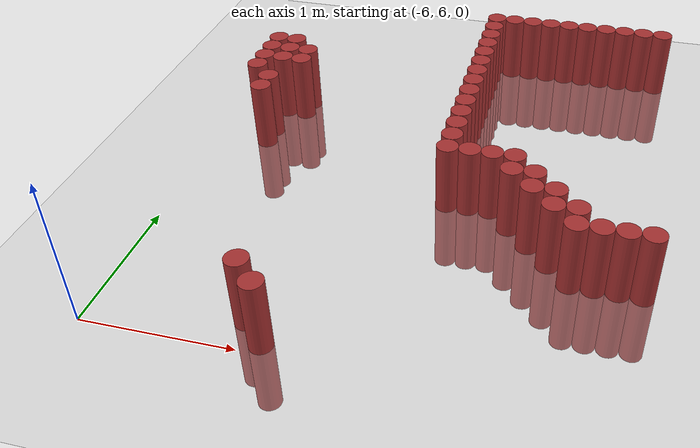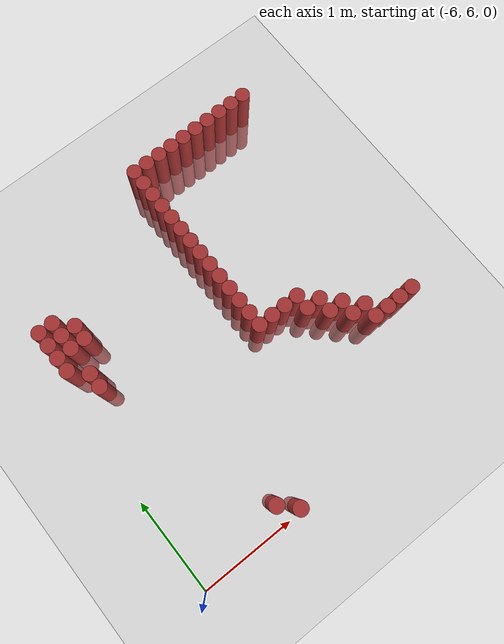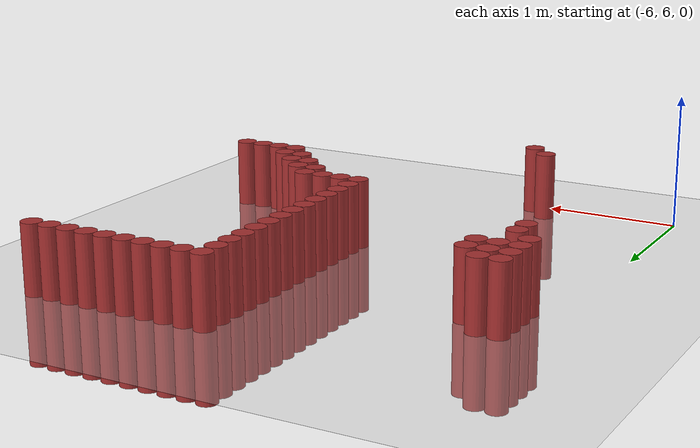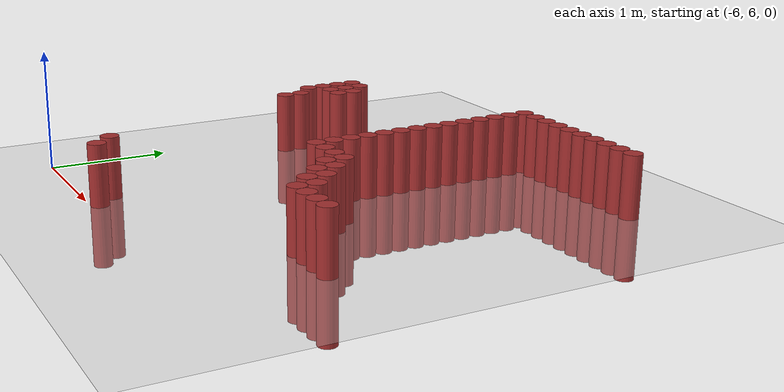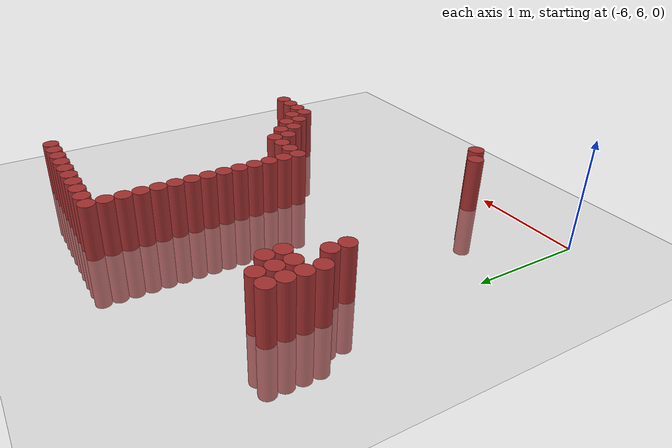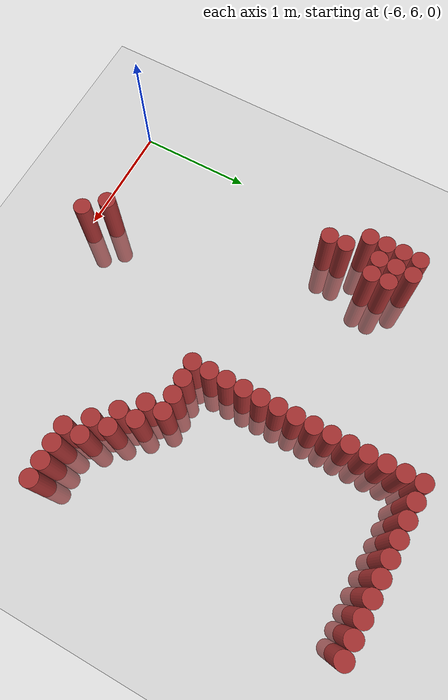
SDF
<sdf version="1.6">
 <world name="default">
  <model name="ground_plane">
   <static>1</static>
   <link name="link">
    <collision name="collision">
     <geometry><plane><normal>0 0 1</normal><size>100 100</size></plane></geometry>
     <surface><friction><ode><mu>100</mu><mu2>50</mu2></ode></friction></surface>
    </collision>
    <visual name="visual">
     <cast_shadows>0</cast_shadows>
     <geometry><plane><normal>0 0 1</normal><size>100 100</size></plane></geometry>
     <material>
      <script><uri>file://media/materials/scripts/gazebo.material</uri><name>Gazebo/Grey</name></script>
     </material>
    </visual>
   </link>
  </model>
  <model name="unit_cylinder_244">
   <static>1</static>
   <pose>-5.775000 8.325000 0.000000 0.000000 0.000000 0.000000</pose>
   <link name="link">
    <inertial>
     <mass>1</mass>
     <inertia><ixx>0.145833</ixx><ixy>0</ixy><ixz>0</ixz><iyy>0.145833</iyy><iyz>0</iyz><izz>0.125</izz></inertia>
    </inertial>
    <collision name="collision">
     <geometry><cylinder><radius>0.075000</radius><length>1</length></cylinder></geometry>
    </collision>
    <visual name="visual">
     <geometry><cylinder><radius>0.075000</radius><length>1</length></cylinder></geometry>
     <material>
      <ambient>0.648000 0.192000 0.192000 1</ambient>
      <diffuse>0.648000 0.192000 0.192000 1</diffuse>
     </material>
     <material>
      <script><name>Gazebo/Grey</name><uri>file://media/materials/scripts/gazebo.material</uri></script>
     </material>
    </visual>
   </link>
  </model>
  <model name="unit_cylinder_245">
   <static>1</static>
   <pose>-5.775000 8.475000 0.000000 0.000000 0.000000 0.000000</pose>
   <link name="link">
    <inertial>
     <mass>1</mass>
     <inertia><ixx>0.145833</ixx><ixy>0</ixy><ixz>0</ixz><iyy>0.145833</iyy><iyz>0</iyz><izz>0.125</izz></inertia>
    </inertial>
    <collision name="collision">
     <geometry><cylinder><radius>0.075000</radius><length>1</length></cylinder></geometry>
    </collision>
    <visual name="visual">
     <geometry><cylinder><radius>0.075000</radius><length>1</length></cylinder></geometry>
     <material>
      <ambient>0.648000 0.192000 0.192000 1</ambient>
      <diffuse>0.648000 0.192000 0.192000 1</diffuse>
     </material>
     <material>
      <script><name>Gazebo/Grey</name><uri>file://media/materials/scripts/gazebo.material</uri></script>
     </material>
    </visual>
   </link>
  </model>
  <model name="unit_cylinder_246">
   <static>1</static>
   <pose>-5.775000 8.625000 0.000000 0.000000 0.000000 0.000000</pose>
   <link name="link">
    <inertial>
     <mass>1</mass>
     <inertia><ixx>0.145833</ixx><ixy>0</ixy><ixz>0</ixz><iyy>0.145833</iyy><iyz>0</iyz><izz>0.125</izz></inertia>
    </inertial>
    <collision name="collision">
     <geometry><cylinder><radius>0.075000</radius><length>1</length></cylinder></geometry>
    </collision>
    <visual name="visual">
     <geometry><cylinder><radius>0.075000</radius><length>1</length></cylinder></geometry>
     <material>
      <ambient>0.648000 0.192000 0.192000 1</ambient>
      <diffuse>0.648000 0.192000 0.192000 1</diffuse>
     </material>
     <material>
      <script><name>Gazebo/Grey</name><uri>file://media/materials/scripts/gazebo.material</uri></script>
     </material>
    </visual>
   </link>
  </model>
  <model name="unit_cylinder_247">
   <static>1</static>
   <pose>-5.775000 8.775000 0.000000 0.000000 0.000000 0.000000</pose>
   <link name="link">
    <inertial>
     <mass>1</mass>
     <inertia><ixx>0.145833</ixx><ixy>0</ixy><ixz>0</ixz><iyy>0.145833</iyy><iyz>0</iyz><izz>0.125</izz></inertia>
    </inertial>
    <collision name="collision">
     <geometry><cylinder><radius>0.075000</radius><length>1</length></cylinder></geometry>
    </collision>
    <visual name="visual">
     <geometry><cylinder><radius>0.075000</radius><length>1</length></cylinder></geometry>
     <material>
      <ambient>0.648000 0.192000 0.192000 1</ambient>
      <diffuse>0.648000 0.192000 0.192000 1</diffuse>
     </material>
     <material>
      <script><name>Gazebo/Grey</name><uri>file://media/materials/scripts/gazebo.material</uri></script>
     </material>
    </visual>
   </link>
  </model>
  <model name="unit_cylinder_250">
   <static>1</static>
   <pose>-5.625000 8.025000 0.000000 0.000000 0.000000 0.000000</pose>
   <link name="link">
    <inertial>
     <mass>1</mass>
     <inertia><ixx>0.145833</ixx><ixy>0</ixy><ixz>0</ixz><iyy>0.145833</iyy><iyz>0</iyz><izz>0.125</izz></inertia>
    </inertial>
    <collision name="collision">
     <geometry><cylinder><radius>0.075000</radius><length>1</length></cylinder></geometry>
    </collision>
    <visual name="visual">
     <geometry><cylinder><radius>0.075000</radius><length>1</length></cylinder></geometry>
     <material>
      <ambient>0.648000 0.192000 0.192000 1</ambient>
      <diffuse>0.648000 0.192000 0.192000 1</diffuse>
     </material>
     <material>
      <script><name>Gazebo/Grey</name><uri>file://media/materials/scripts/gazebo.material</uri></script>
     </material>
    </visual>
   </link>
  </model>
  <model name="unit_cylinder_251">
   <static>1</static>
   <pose>-5.625000 8.175000 0.000000 0.000000 0.000000 0.000000</pose>
   <link name="link">
    <inertial>
     <mass>1</mass>
     <inertia><ixx>0.145833</ixx><ixy>0</ixy><ixz>0</ixz><iyy>0.145833</iyy><iyz>0</iyz><izz>0.125</izz></inertia>
    </inertial>
    <collision name="collision">
     <geometry><cylinder><radius>0.075000</radius><length>1</length></cylinder></geometry>
    </collision>
    <visual name="visual">
     <geometry><cylinder><radius>0.075000</radius><length>1</length></cylinder></geometry>
     <material>
      <ambient>0.648000 0.192000 0.192000 1</ambient>
      <diffuse>0.648000 0.192000 0.192000 1</diffuse>
     </material>
     <material>
      <script><name>Gazebo/Grey</name><uri>file://media/materials/scripts/gazebo.material</uri></script>
     </material>
    </visual>
   </link>
  </model>
  <model name="unit_cylinder_252">
   <static>1</static>
   <pose>-5.625000 8.475000 0.000000 0.000000 0.000000 0.000000</pose>
   <link name="link">
    <inertial>
     <mass>1</mass>
     <inertia><ixx>0.145833</ixx><ixy>0</ixy><ixz>0</ixz><iyy>0.145833</iyy><iyz>0</iyz><izz>0.125</izz></inertia>
    </inertial>
    <collision name="collision">
     <geometry><cylinder><radius>0.075000</radius><length>1</length></cylinder></geometry>
    </collision>
    <visual name="visual">
     <geometry><cylinder><radius>0.075000</radius><length>1</length></cylinder></geometry>
     <material>
      <ambient>0.648000 0.192000 0.192000 1</ambient>
      <diffuse>0.648000 0.192000 0.192000 1</diffuse>
     </material>
     <material>
      <script><name>Gazebo/Grey</name><uri>file://media/materials/scripts/gazebo.material</uri></script>
     </material>
    </visual>
   </link>
  </model>
  <model name="unit_cylinder_253">
   <static>1</static>
   <pose>-5.625000 8.625000 0.000000 0.000000 0.000000 0.000000</pose>
   <link name="link">
    <inertial>
     <mass>1</mass>
     <inertia><ixx>0.145833</ixx><ixy>0</ixy><ixz>0</ixz><iyy>0.145833</iyy><iyz>0</iyz><izz>0.125</izz></inertia>
    </inertial>
    <collision name="collision">
     <geometry><cylinder><radius>0.075000</radius><length>1</length></cylinder></geometry>
    </collision>
    <visual name="visual">
     <geometry><cylinder><radius>0.075000</radius><length>1</length></cylinder></geometry>
     <material>
      <ambient>0.648000 0.192000 0.192000 1</ambient>
      <diffuse>0.648000 0.192000 0.192000 1</diffuse>
     </material>
     <material>
      <script><name>Gazebo/Grey</name><uri>file://media/materials/scripts/gazebo.material</uri></script>
     </material>
    </visual>
   </link>
  </model>
  <model name="unit_cylinder_254">
   <static>1</static>
   <pose>-5.625000 8.775000 0.000000 0.000000 0.000000 0.000000</pose>
   <link name="link">
    <inertial>
     <mass>1</mass>
     <inertia><ixx>0.145833</ixx><ixy>0</ixy><ixz>0</ixz><iyy>0.145833</iyy><iyz>0</iyz><izz>0.125</izz></inertia>
    </inertial>
    <collision name="collision">
     <geometry><cylinder><radius>0.075000</radius><length>1</length></cylinder></geometry>
    </collision>
    <visual name="visual">
     <geometry><cylinder><radius>0.075000</radius><length>1</length></cylinder></geometry>
     <material>
      <ambient>0.648000 0.192000 0.192000 1</ambient>
      <diffuse>0.648000 0.192000 0.192000 1</diffuse>
     </material>
     <material>
      <script><name>Gazebo/Grey</name><uri>file://media/materials/scripts/gazebo.material</uri></script>
     </material>
    </visual>
   </link>
  </model>
  <model name="unit_cylinder_258">
   <static>1</static>
   <pose>-5.475000 8.475000 0.000000 0.000000 0.000000 0.000000</pose>
   <link name="link">
    <inertial>
     <mass>1</mass>
     <inertia><ixx>0.145833</ixx><ixy>0</ixy><ixz>0</ixz><iyy>0.145833</iyy><iyz>0</iyz><izz>0.125</izz></inertia>
    </inertial>
    <collision name="collision">
     <geometry><cylinder><radius>0.075000</radius><length>1</length></cylinder></geometry>
    </collision>
    <visual name="visual">
     <geometry><cylinder><radius>0.075000</radius><length>1</length></cylinder></geometry>
     <material>
      <ambient>0.648000 0.192000 0.192000 1</ambient>
      <diffuse>0.648000 0.192000 0.192000 1</diffuse>
     </material>
     <material>
      <script><name>Gazebo/Grey</name><uri>file://media/materials/scripts/gazebo.material</uri></script>
     </material>
    </visual>
   </link>
  </model>
  <model name="unit_cylinder_259">
   <static>1</static>
   <pose>-5.475000 8.625000 0.000000 0.000000 0.000000 0.000000</pose>
   <link name="link">
    <inertial>
     <mass>1</mass>
     <inertia><ixx>0.145833</ixx><ixy>0</ixy><ixz>0</ixz><iyy>0.145833</iyy><iyz>0</iyz><izz>0.125</izz></inertia>
    </inertial>
    <collision name="collision">
     <geometry><cylinder><radius>0.075000</radius><length>1</length></cylinder></geometry>
    </collision>
    <visual name="visual">
     <geometry><cylinder><radius>0.075000</radius><length>1</length></cylinder></geometry>
     <material>
      <ambient>0.648000 0.192000 0.192000 1</ambient>
      <diffuse>0.648000 0.192000 0.192000 1</diffuse>
     </material>
     <material>
      <script><name>Gazebo/Grey</name><uri>file://media/materials/scripts/gazebo.material</uri></script>
     </material>
    </visual>
   </link>
  </model>
  <model name="unit_cylinder_265">
   <static>1</static>
   <pose>-5.025000 6.225000 0.000000 0.000000 0.000000 0.000000</pose>
   <link name="link">
    <inertial>
     <mass>1</mass>
     <inertia><ixx>0.145833</ixx><ixy>0</ixy><ixz>0</ixz><iyy>0.145833</iyy><iyz>0</iyz><izz>0.125</izz></inertia>
    </inertial>
    <collision name="collision">
     <geometry><cylinder><radius>0.075000</radius><length>1</length></cylinder></geometry>
    </collision>
    <visual name="visual">
     <geometry><cylinder><radius>0.075000</radius><length>1</length></cylinder></geometry>
     <material>
      <ambient>0.648000 0.192000 0.192000 1</ambient>
      <diffuse>0.648000 0.192000 0.192000 1</diffuse>
     </material>
     <material>
      <script><name>Gazebo/Grey</name><uri>file://media/materials/scripts/gazebo.material</uri></script>
     </material>
    </visual>
   </link>
  </model>
  <model name="unit_cylinder_267">
   <static>1</static>
   <pose>-4.875000 6.075000 0.000000 0.000000 0.000000 0.000000</pose>
   <link name="link">
    <inertial>
     <mass>1</mass>
     <inertia><ixx>0.145833</ixx><ixy>0</ixy><ixz>0</ixz><iyy>0.145833</iyy><iyz>0</iyz><izz>0.125</izz></inertia>
    </inertial>
    <collision name="collision">
     <geometry><cylinder><radius>0.075000</radius><length>1</length></cylinder></geometry>
    </collision>
    <visual name="visual">
     <geometry><cylinder><radius>0.075000</radius><length>1</length></cylinder></geometry>
     <material>
      <ambient>0.648000 0.192000 0.192000 1</ambient>
      <diffuse>0.648000 0.192000 0.192000 1</diffuse>
     </material>
     <material>
      <script><name>Gazebo/Grey</name><uri>file://media/materials/scripts/gazebo.material</uri></script>
     </material>
    </visual>
   </link>
  </model>
  <model name="unit_cylinder_278">
   <static>1</static>
   <pose>-4.125000 7.575000 0.000000 0.000000 0.000000 0.000000</pose>
   <link name="link">
    <inertial>
     <mass>1</mass>
     <inertia><ixx>0.145833</ixx><ixy>0</ixy><ixz>0</ixz><iyy>0.145833</iyy><iyz>0</iyz><izz>0.125</izz></inertia>
    </inertial>
    <collision name="collision">
     <geometry><cylinder><radius>0.075000</radius><length>1</length></cylinder></geometry>
    </collision>
    <visual name="visual">
     <geometry><cylinder><radius>0.075000</radius><length>1</length></cylinder></geometry>
     <material>
      <ambient>0.648000 0.192000 0.192000 1</ambient>
      <diffuse>0.648000 0.192000 0.192000 1</diffuse>
     </material>
     <material>
      <script><name>Gazebo/Grey</name><uri>file://media/materials/scripts/gazebo.material</uri></script>
     </material>
    </visual>
   </link>
  </model>
  <model name="unit_cylinder_279">
   <static>1</static>
   <pose>-4.125000 7.725000 0.000000 0.000000 0.000000 0.000000</pose>
   <link name="link">
    <inertial>
     <mass>1</mass>
     <inertia><ixx>0.145833</ixx><ixy>0</ixy><ixz>0</ixz><iyy>0.145833</iyy><iyz>0</iyz><izz>0.125</izz></inertia>
    </inertial>
    <collision name="collision">
     <geometry><cylinder><radius>0.075000</radius><length>1</length></cylinder></geometry>
    </collision>
    <visual name="visual">
     <geometry><cylinder><radius>0.075000</radius><length>1</length></cylinder></geometry>
     <material>
      <ambient>0.648000 0.192000 0.192000 1</ambient>
      <diffuse>0.648000 0.192000 0.192000 1</diffuse>
     </material>
     <material>
      <script><name>Gazebo/Grey</name><uri>file://media/materials/scripts/gazebo.material</uri></script>
     </material>
    </visual>
   </link>
  </model>
  <model name="unit_cylinder_280">
   <static>1</static>
   <pose>-4.125000 7.875000 0.000000 0.000000 0.000000 0.000000</pose>
   <link name="link">
    <inertial>
     <mass>1</mass>
     <inertia><ixx>0.145833</ixx><ixy>0</ixy><ixz>0</ixz><iyy>0.145833</iyy><iyz>0</iyz><izz>0.125</izz></inertia>
    </inertial>
    <collision name="collision">
     <geometry><cylinder><radius>0.075000</radius><length>1</length></cylinder></geometry>
    </collision>
    <visual name="visual">
     <geometry><cylinder><radius>0.075000</radius><length>1</length></cylinder></geometry>
     <material>
      <ambient>0.648000 0.192000 0.192000 1</ambient>
      <diffuse>0.648000 0.192000 0.192000 1</diffuse>
     </material>
     <material>
      <script><name>Gazebo/Grey</name><uri>file://media/materials/scripts/gazebo.material</uri></script>
     </material>
    </visual>
   </link>
  </model>
  <model name="unit_cylinder_281">
   <static>1</static>
   <pose>-4.125000 8.025000 0.000000 0.000000 0.000000 0.000000</pose>
   <link name="link">
    <inertial>
     <mass>1</mass>
     <inertia><ixx>0.145833</ixx><ixy>0</ixy><ixz>0</ixz><iyy>0.145833</iyy><iyz>0</iyz><izz>0.125</izz></inertia>
    </inertial>
    <collision name="collision">
     <geometry><cylinder><radius>0.075000</radius><length>1</length></cylinder></geometry>
    </collision>
    <visual name="visual">
     <geometry><cylinder><radius>0.075000</radius><length>1</length></cylinder></geometry>
     <material>
      <ambient>0.648000 0.192000 0.192000 1</ambient>
      <diffuse>0.648000 0.192000 0.192000 1</diffuse>
     </material>
     <material>
      <script><name>Gazebo/Grey</name><uri>file://media/materials/scripts/gazebo.material</uri></script>
     </material>
    </visual>
   </link>
  </model>
  <model name="unit_cylinder_282">
   <static>1</static>
   <pose>-4.125000 8.175000 0.000000 0.000000 0.000000 0.000000</pose>
   <link name="link">
    <inertial>
     <mass>1</mass>
     <inertia><ixx>0.145833</ixx><ixy>0</ixy><ixz>0</ixz><iyy>0.145833</iyy><iyz>0</iyz><izz>0.125</izz></inertia>
    </inertial>
    <collision name="collision">
     <geometry><cylinder><radius>0.075000</radius><length>1</length></cylinder></geometry>
    </collision>
    <visual name="visual">
     <geometry><cylinder><radius>0.075000</radius><length>1</length></cylinder></geometry>
     <material>
      <ambient>0.648000 0.192000 0.192000 1</ambient>
      <diffuse>0.648000 0.192000 0.192000 1</diffuse>
     </material>
     <material>
      <script><name>Gazebo/Grey</name><uri>file://media/materials/scripts/gazebo.material</uri></script>
     </material>
    </visual>
   </link>
  </model>
  <model name="unit_cylinder_283">
   <static>1</static>
   <pose>-4.125000 8.325000 0.000000 0.000000 0.000000 0.000000</pose>
   <link name="link">
    <inertial>
     <mass>1</mass>
     <inertia><ixx>0.145833</ixx><ixy>0</ixy><ixz>0</ixz><iyy>0.145833</iyy><iyz>0</iyz><izz>0.125</izz></inertia>
    </inertial>
    <collision name="collision">
     <geometry><cylinder><radius>0.075000</radius><length>1</length></cylinder></geometry>
    </collision>
    <visual name="visual">
     <geometry><cylinder><radius>0.075000</radius><length>1</length></cylinder></geometry>
     <material>
      <ambient>0.648000 0.192000 0.192000 1</ambient>
      <diffuse>0.648000 0.192000 0.192000 1</diffuse>
     </material>
     <material>
      <script><name>Gazebo/Grey</name><uri>file://media/materials/scripts/gazebo.material</uri></script>
     </material>
    </visual>
   </link>
  </model>
  <model name="unit_cylinder_284">
   <static>1</static>
   <pose>-4.125000 8.475000 0.000000 0.000000 0.000000 0.000000</pose>
   <link name="link">
    <inertial>
     <mass>1</mass>
     <inertia><ixx>0.145833</ixx><ixy>0</ixy><ixz>0</ixz><iyy>0.145833</iyy><iyz>0</iyz><izz>0.125</izz></inertia>
    </inertial>
    <collision name="collision">
     <geometry><cylinder><radius>0.075000</radius><length>1</length></cylinder></geometry>
    </collision>
    <visual name="visual">
     <geometry><cylinder><radius>0.075000</radius><length>1</length></cylinder></geometry>
     <material>
      <ambient>0.648000 0.192000 0.192000 1</ambient>
      <diffuse>0.648000 0.192000 0.192000 1</diffuse>
     </material>
     <material>
      <script><name>Gazebo/Grey</name><uri>file://media/materials/scripts/gazebo.material</uri></script>
     </material>
    </visual>
   </link>
  </model>
  <model name="unit_cylinder_285">
   <static>1</static>
   <pose>-4.125000 8.625000 0.000000 0.000000 0.000000 0.000000</pose>
   <link name="link">
    <inertial>
     <mass>1</mass>
     <inertia><ixx>0.145833</ixx><ixy>0</ixy><ixz>0</ixz><iyy>0.145833</iyy><iyz>0</iyz><izz>0.125</izz></inertia>
    </inertial>
    <collision name="collision">
     <geometry><cylinder><radius>0.075000</radius><length>1</length></cylinder></geometry>
    </collision>
    <visual name="visual">
     <geometry><cylinder><radius>0.075000</radius><length>1</length></cylinder></geometry>
     <material>
      <ambient>0.648000 0.192000 0.192000 1</ambient>
      <diffuse>0.648000 0.192000 0.192000 1</diffuse>
     </material>
     <material>
      <script><name>Gazebo/Grey</name><uri>file://media/materials/scripts/gazebo.material</uri></script>
     </material>
    </visual>
   </link>
  </model>
  <model name="unit_cylinder_286">
   <static>1</static>
   <pose>-4.125000 8.775000 0.000000 0.000000 0.000000 0.000000</pose>
   <link name="link">
    <inertial>
     <mass>1</mass>
     <inertia><ixx>0.145833</ixx><ixy>0</ixy><ixz>0</ixz><iyy>0.145833</iyy><iyz>0</iyz><izz>0.125</izz></inertia>
    </inertial>
    <collision name="collision">
     <geometry><cylinder><radius>0.075000</radius><length>1</length></cylinder></geometry>
    </collision>
    <visual name="visual">
     <geometry><cylinder><radius>0.075000</radius><length>1</length></cylinder></geometry>
     <material>
      <ambient>0.648000 0.192000 0.192000 1</ambient>
      <diffuse>0.648000 0.192000 0.192000 1</diffuse>
     </material>
     <material>
      <script><name>Gazebo/Grey</name><uri>file://media/materials/scripts/gazebo.material</uri></script>
     </material>
    </visual>
   </link>
  </model>
  <model name="unit_cylinder_287">
   <static>1</static>
   <pose>-4.125000 8.925000 0.000000 0.000000 0.000000 0.000000</pose>
   <link name="link">
    <inertial>
     <mass>1</mass>
     <inertia><ixx>0.145833</ixx><ixy>0</ixy><ixz>0</ixz><iyy>0.145833</iyy><iyz>0</iyz><izz>0.125</izz></inertia>
    </inertial>
    <collision name="collision">
     <geometry><cylinder><radius>0.075000</radius><length>1</length></cylinder></geometry>
    </collision>
    <visual name="visual">
     <geometry><cylinder><radius>0.075000</radius><length>1</length></cylinder></geometry>
     <material>
      <ambient>0.648000 0.192000 0.192000 1</ambient>
      <diffuse>0.648000 0.192000 0.192000 1</diffuse>
     </material>
     <material>
      <script><name>Gazebo/Grey</name><uri>file://media/materials/scripts/gazebo.material</uri></script>
     </material>
    </visual>
   </link>
  </model>
  <model name="unit_cylinder_288">
   <static>1</static>
   <pose>-4.125000 9.075000 0.000000 0.000000 0.000000 0.000000</pose>
   <link name="link">
    <inertial>
     <mass>1</mass>
     <inertia><ixx>0.145833</ixx><ixy>0</ixy><ixz>0</ixz><iyy>0.145833</iyy><iyz>0</iyz><izz>0.125</izz></inertia>
    </inertial>
    <collision name="collision">
     <geometry><cylinder><radius>0.075000</radius><length>1</length></cylinder></geometry>
    </collision>
    <visual name="visual">
     <geometry><cylinder><radius>0.075000</radius><length>1</length></cylinder></geometry>
     <material>
      <ambient>0.648000 0.192000 0.192000 1</ambient>
      <diffuse>0.648000 0.192000 0.192000 1</diffuse>
     </material>
     <material>
      <script><name>Gazebo/Grey</name><uri>file://media/materials/scripts/gazebo.material</uri></script>
     </material>
    </visual>
   </link>
  </model>
  <model name="unit_cylinder_289">
   <static>1</static>
   <pose>-4.125000 9.225000 0.000000 0.000000 0.000000 0.000000</pose>
   <link name="link">
    <inertial>
     <mass>1</mass>
     <inertia><ixx>0.145833</ixx><ixy>0</ixy><ixz>0</ixz><iyy>0.145833</iyy><iyz>0</iyz><izz>0.125</izz></inertia>
    </inertial>
    <collision name="collision">
     <geometry><cylinder><radius>0.075000</radius><length>1</length></cylinder></geometry>
    </collision>
    <visual name="visual">
     <geometry><cylinder><radius>0.075000</radius><length>1</length></cylinder></geometry>
     <material>
      <ambient>0.648000 0.192000 0.192000 1</ambient>
      <diffuse>0.648000 0.192000 0.192000 1</diffuse>
     </material>
     <material>
      <script><name>Gazebo/Grey</name><uri>file://media/materials/scripts/gazebo.material</uri></script>
     </material>
    </visual>
   </link>
  </model>
  <model name="unit_cylinder_290">
   <static>1</static>
   <pose>-4.125000 9.375000 0.000000 0.000000 0.000000 0.000000</pose>
   <link name="link">
    <inertial>
     <mass>1</mass>
     <inertia><ixx>0.145833</ixx><ixy>0</ixy><ixz>0</ixz><iyy>0.145833</iyy><iyz>0</iyz><izz>0.125</izz></inertia>
    </inertial>
    <collision name="collision">
     <geometry><cylinder><radius>0.075000</radius><length>1</length></cylinder></geometry>
    </collision>
    <visual name="visual">
     <geometry><cylinder><radius>0.075000</radius><length>1</length></cylinder></geometry>
     <material>
      <ambient>0.648000 0.192000 0.192000 1</ambient>
      <diffuse>0.648000 0.192000 0.192000 1</diffuse>
     </material>
     <material>
      <script><name>Gazebo/Grey</name><uri>file://media/materials/scripts/gazebo.material</uri></script>
     </material>
    </visual>
   </link>
  </model>
  <model name="unit_cylinder_291">
   <static>1</static>
   <pose>-4.125000 9.525000 0.000000 0.000000 0.000000 0.000000</pose>
   <link name="link">
    <inertial>
     <mass>1</mass>
     <inertia><ixx>0.145833</ixx><ixy>0</ixy><ixz>0</ixz><iyy>0.145833</iyy><iyz>0</iyz><izz>0.125</izz></inertia>
    </inertial>
    <collision name="collision">
     <geometry><cylinder><radius>0.075000</radius><length>1</length></cylinder></geometry>
    </collision>
    <visual name="visual">
     <geometry><cylinder><radius>0.075000</radius><length>1</length></cylinder></geometry>
     <material>
      <ambient>0.648000 0.192000 0.192000 1</ambient>
      <diffuse>0.648000 0.192000 0.192000 1</diffuse>
     </material>
     <material>
      <script><name>Gazebo/Grey</name><uri>file://media/materials/scripts/gazebo.material</uri></script>
     </material>
    </visual>
   </link>
  </model>
  <model name="unit_cylinder_295">
   <static>1</static>
   <pose>-3.975000 7.575000 0.000000 0.000000 0.000000 0.000000</pose>
   <link name="link">
    <inertial>
     <mass>1</mass>
     <inertia><ixx>0.145833</ixx><ixy>0</ixy><ixz>0</ixz><iyy>0.145833</iyy><iyz>0</iyz><izz>0.125</izz></inertia>
    </inertial>
    <collision name="collision">
     <geometry><cylinder><radius>0.075000</radius><length>1</length></cylinder></geometry>
    </collision>
    <visual name="visual">
     <geometry><cylinder><radius>0.075000</radius><length>1</length></cylinder></geometry>
     <material>
      <ambient>0.648000 0.192000 0.192000 1</ambient>
      <diffuse>0.648000 0.192000 0.192000 1</diffuse>
     </material>
     <material>
      <script><name>Gazebo/Grey</name><uri>file://media/materials/scripts/gazebo.material</uri></script>
     </material>
    </visual>
   </link>
  </model>
  <model name="unit_cylinder_296">
   <static>1</static>
   <pose>-3.975000 9.525000 0.000000 0.000000 0.000000 0.000000</pose>
   <link name="link">
    <inertial>
     <mass>1</mass>
     <inertia><ixx>0.145833</ixx><ixy>0</ixy><ixz>0</ixz><iyy>0.145833</iyy><iyz>0</iyz><izz>0.125</izz></inertia>
    </inertial>
    <collision name="collision">
     <geometry><cylinder><radius>0.075000</radius><length>1</length></cylinder></geometry>
    </collision>
    <visual name="visual">
     <geometry><cylinder><radius>0.075000</radius><length>1</length></cylinder></geometry>
     <material>
      <ambient>0.648000 0.192000 0.192000 1</ambient>
      <diffuse>0.648000 0.192000 0.192000 1</diffuse>
     </material>
     <material>
      <script><name>Gazebo/Grey</name><uri>file://media/materials/scripts/gazebo.material</uri></script>
     </material>
    </visual>
   </link>
  </model>
  <model name="unit_cylinder_299">
   <static>1</static>
   <pose>-3.825000 7.575000 0.000000 0.000000 0.000000 0.000000</pose>
   <link name="link">
    <inertial>
     <mass>1</mass>
     <inertia><ixx>0.145833</ixx><ixy>0</ixy><ixz>0</ixz><iyy>0.145833</iyy><iyz>0</iyz><izz>0.125</izz></inertia>
    </inertial>
    <collision name="collision">
     <geometry><cylinder><radius>0.075000</radius><length>1</length></cylinder></geometry>
    </collision>
    <visual name="visual">
     <geometry><cylinder><radius>0.075000</radius><length>1</length></cylinder></geometry>
     <material>
      <ambient>0.648000 0.192000 0.192000 1</ambient>
      <diffuse>0.648000 0.192000 0.192000 1</diffuse>
     </material>
     <material>
      <script><name>Gazebo/Grey</name><uri>file://media/materials/scripts/gazebo.material</uri></script>
     </material>
    </visual>
   </link>
  </model>
  <model name="unit_cylinder_300">
   <static>1</static>
   <pose>-3.825000 9.525000 0.000000 0.000000 0.000000 0.000000</pose>
   <link name="link">
    <inertial>
     <mass>1</mass>
     <inertia><ixx>0.145833</ixx><ixy>0</ixy><ixz>0</ixz><iyy>0.145833</iyy><iyz>0</iyz><izz>0.125</izz></inertia>
    </inertial>
    <collision name="collision">
     <geometry><cylinder><radius>0.075000</radius><length>1</length></cylinder></geometry>
    </collision>
    <visual name="visual">
     <geometry><cylinder><radius>0.075000</radius><length>1</length></cylinder></geometry>
     <material>
      <ambient>0.648000 0.192000 0.192000 1</ambient>
      <diffuse>0.648000 0.192000 0.192000 1</diffuse>
     </material>
     <material>
      <script><name>Gazebo/Grey</name><uri>file://media/materials/scripts/gazebo.material</uri></script>
     </material>
    </visual>
   </link>
  </model>
  <model name="unit_cylinder_303">
   <static>1</static>
   <pose>-3.675000 7.425000 0.000000 0.000000 0.000000 0.000000</pose>
   <link name="link">
    <inertial>
     <mass>1</mass>
     <inertia><ixx>0.145833</ixx><ixy>0</ixy><ixz>0</ixz><iyy>0.145833</iyy><iyz>0</iyz><izz>0.125</izz></inertia>
    </inertial>
    <collision name="collision">
     <geometry><cylinder><radius>0.075000</radius><length>1</length></cylinder></geometry>
    </collision>
    <visual name="visual">
     <geometry><cylinder><radius>0.075000</radius><length>1</length></cylinder></geometry>
     <material>
      <ambient>0.648000 0.192000 0.192000 1</ambient>
      <diffuse>0.648000 0.192000 0.192000 1</diffuse>
     </material>
     <material>
      <script><name>Gazebo/Grey</name><uri>file://media/materials/scripts/gazebo.material</uri></script>
     </material>
    </visual>
   </link>
  </model>
  <model name="unit_cylinder_304">
   <static>1</static>
   <pose>-3.675000 7.575000 0.000000 0.000000 0.000000 0.000000</pose>
   <link name="link">
    <inertial>
     <mass>1</mass>
     <inertia><ixx>0.145833</ixx><ixy>0</ixy><ixz>0</ixz><iyy>0.145833</iyy><iyz>0</iyz><izz>0.125</izz></inertia>
    </inertial>
    <collision name="collision">
     <geometry><cylinder><radius>0.075000</radius><length>1</length></cylinder></geometry>
    </collision>
    <visual name="visual">
     <geometry><cylinder><radius>0.075000</radius><length>1</length></cylinder></geometry>
     <material>
      <ambient>0.648000 0.192000 0.192000 1</ambient>
      <diffuse>0.648000 0.192000 0.192000 1</diffuse>
     </material>
     <material>
      <script><name>Gazebo/Grey</name><uri>file://media/materials/scripts/gazebo.material</uri></script>
     </material>
    </visual>
   </link>
  </model>
  <model name="unit_cylinder_305">
   <static>1</static>
   <pose>-3.675000 9.525000 0.000000 0.000000 0.000000 0.000000</pose>
   <link name="link">
    <inertial>
     <mass>1</mass>
     <inertia><ixx>0.145833</ixx><ixy>0</ixy><ixz>0</ixz><iyy>0.145833</iyy><iyz>0</iyz><izz>0.125</izz></inertia>
    </inertial>
    <collision name="collision">
     <geometry><cylinder><radius>0.075000</radius><length>1</length></cylinder></geometry>
    </collision>
    <visual name="visual">
     <geometry><cylinder><radius>0.075000</radius><length>1</length></cylinder></geometry>
     <material>
      <ambient>0.648000 0.192000 0.192000 1</ambient>
      <diffuse>0.648000 0.192000 0.192000 1</diffuse>
     </material>
     <material>
      <script><name>Gazebo/Grey</name><uri>file://media/materials/scripts/gazebo.material</uri></script>
     </material>
    </visual>
   </link>
  </model>
  <model name="unit_cylinder_306">
   <static>1</static>
   <pose>-3.525000 7.275000 0.000000 0.000000 0.000000 0.000000</pose>
   <link name="link">
    <inertial>
     <mass>1</mass>
     <inertia><ixx>0.145833</ixx><ixy>0</ixy><ixz>0</ixz><iyy>0.145833</iyy><iyz>0</iyz><izz>0.125</izz></inertia>
    </inertial>
    <collision name="collision">
     <geometry><cylinder><radius>0.075000</radius><length>1</length></cylinder></geometry>
    </collision>
    <visual name="visual">
     <geometry><cylinder><radius>0.075000</radius><length>1</length></cylinder></geometry>
     <material>
      <ambient>0.648000 0.192000 0.192000 1</ambient>
      <diffuse>0.648000 0.192000 0.192000 1</diffuse>
     </material>
     <material>
      <script><name>Gazebo/Grey</name><uri>file://media/materials/scripts/gazebo.material</uri></script>
     </material>
    </visual>
   </link>
  </model>
  <model name="unit_cylinder_307">
   <static>1</static>
   <pose>-3.525000 7.425000 0.000000 0.000000 0.000000 0.000000</pose>
   <link name="link">
    <inertial>
     <mass>1</mass>
     <inertia><ixx>0.145833</ixx><ixy>0</ixy><ixz>0</ixz><iyy>0.145833</iyy><iyz>0</iyz><izz>0.125</izz></inertia>
    </inertial>
    <collision name="collision">
     <geometry><cylinder><radius>0.075000</radius><length>1</length></cylinder></geometry>
    </collision>
    <visual name="visual">
     <geometry><cylinder><radius>0.075000</radius><length>1</length></cylinder></geometry>
     <material>
      <ambient>0.648000 0.192000 0.192000 1</ambient>
      <diffuse>0.648000 0.192000 0.192000 1</diffuse>
     </material>
     <material>
      <script><name>Gazebo/Grey</name><uri>file://media/materials/scripts/gazebo.material</uri></script>
     </material>
    </visual>
   </link>
  </model>
  <model name="unit_cylinder_308">
   <static>1</static>
   <pose>-3.525000 9.525000 0.000000 0.000000 0.000000 0.000000</pose>
   <link name="link">
    <inertial>
     <mass>1</mass>
     <inertia><ixx>0.145833</ixx><ixy>0</ixy><ixz>0</ixz><iyy>0.145833</iyy><iyz>0</iyz><izz>0.125</izz></inertia>
    </inertial>
    <collision name="collision">
     <geometry><cylinder><radius>0.075000</radius><length>1</length></cylinder></geometry>
    </collision>
    <visual name="visual">
     <geometry><cylinder><radius>0.075000</radius><length>1</length></cylinder></geometry>
     <material>
      <ambient>0.648000 0.192000 0.192000 1</ambient>
      <diffuse>0.648000 0.192000 0.192000 1</diffuse>
     </material>
     <material>
      <script><name>Gazebo/Grey</name><uri>file://media/materials/scripts/gazebo.material</uri></script>
     </material>
    </visual>
   </link>
  </model>
  <model name="unit_cylinder_309">
   <static>1</static>
   <pose>-3.375000 7.125000 0.000000 0.000000 0.000000 0.000000</pose>
   <link name="link">
    <inertial>
     <mass>1</mass>
     <inertia><ixx>0.145833</ixx><ixy>0</ixy><ixz>0</ixz><iyy>0.145833</iyy><iyz>0</iyz><izz>0.125</izz></inertia>
    </inertial>
    <collision name="collision">
     <geometry><cylinder><radius>0.075000</radius><length>1</length></cylinder></geometry>
    </collision>
    <visual name="visual">
     <geometry><cylinder><radius>0.075000</radius><length>1</length></cylinder></geometry>
     <material>
      <ambient>0.648000 0.192000 0.192000 1</ambient>
      <diffuse>0.648000 0.192000 0.192000 1</diffuse>
     </material>
     <material>
      <script><name>Gazebo/Grey</name><uri>file://media/materials/scripts/gazebo.material</uri></script>
     </material>
    </visual>
   </link>
  </model>
  <model name="unit_cylinder_310">
   <static>1</static>
   <pose>-3.375000 7.275000 0.000000 0.000000 0.000000 0.000000</pose>
   <link name="link">
    <inertial>
     <mass>1</mass>
     <inertia><ixx>0.145833</ixx><ixy>0</ixy><ixz>0</ixz><iyy>0.145833</iyy><iyz>0</iyz><izz>0.125</izz></inertia>
    </inertial>
    <collision name="collision">
     <geometry><cylinder><radius>0.075000</radius><length>1</length></cylinder></geometry>
    </collision>
    <visual name="visual">
     <geometry><cylinder><radius>0.075000</radius><length>1</length></cylinder></geometry>
     <material>
      <ambient>0.648000 0.192000 0.192000 1</ambient>
      <diffuse>0.648000 0.192000 0.192000 1</diffuse>
     </material>
     <material>
      <script><name>Gazebo/Grey</name><uri>file://media/materials/scripts/gazebo.material</uri></script>
     </material>
    </visual>
   </link>
  </model>
  <model name="unit_cylinder_311">
   <static>1</static>
   <pose>-3.375000 9.525000 0.000000 0.000000 0.000000 0.000000</pose>
   <link name="link">
    <inertial>
     <mass>1</mass>
     <inertia><ixx>0.145833</ixx><ixy>0</ixy><ixz>0</ixz><iyy>0.145833</iyy><iyz>0</iyz><izz>0.125</izz></inertia>
    </inertial>
    <collision name="collision">
     <geometry><cylinder><radius>0.075000</radius><length>1</length></cylinder></geometry>
    </collision>
    <visual name="visual">
     <geometry><cylinder><radius>0.075000</radius><length>1</length></cylinder></geometry>
     <material>
      <ambient>0.648000 0.192000 0.192000 1</ambient>
      <diffuse>0.648000 0.192000 0.192000 1</diffuse>
     </material>
     <material>
      <script><name>Gazebo/Grey</name><uri>file://media/materials/scripts/gazebo.material</uri></script>
     </material>
    </visual>
   </link>
  </model>
  <model name="unit_cylinder_312">
   <static>1</static>
   <pose>-3.225000 6.975000 0.000000 0.000000 0.000000 0.000000</pose>
   <link name="link">
    <inertial>
     <mass>1</mass>
     <inertia><ixx>0.145833</ixx><ixy>0</ixy><ixz>0</ixz><iyy>0.145833</iyy><iyz>0</iyz><izz>0.125</izz></inertia>
    </inertial>
    <collision name="collision">
     <geometry><cylinder><radius>0.075000</radius><length>1</length></cylinder></geometry>
    </collision>
    <visual name="visual">
     <geometry><cylinder><radius>0.075000</radius><length>1</length></cylinder></geometry>
     <material>
      <ambient>0.648000 0.192000 0.192000 1</ambient>
      <diffuse>0.648000 0.192000 0.192000 1</diffuse>
     </material>
     <material>
      <script><name>Gazebo/Grey</name><uri>file://media/materials/scripts/gazebo.material</uri></script>
     </material>
    </visual>
   </link>
  </model>
  <model name="unit_cylinder_313">
   <static>1</static>
   <pose>-3.225000 7.125000 0.000000 0.000000 0.000000 0.000000</pose>
   <link name="link">
    <inertial>
     <mass>1</mass>
     <inertia><ixx>0.145833</ixx><ixy>0</ixy><ixz>0</ixz><iyy>0.145833</iyy><iyz>0</iyz><izz>0.125</izz></inertia>
    </inertial>
    <collision name="collision">
     <geometry><cylinder><radius>0.075000</radius><length>1</length></cylinder></geometry>
    </collision>
    <visual name="visual">
     <geometry><cylinder><radius>0.075000</radius><length>1</length></cylinder></geometry>
     <material>
      <ambient>0.648000 0.192000 0.192000 1</ambient>
      <diffuse>0.648000 0.192000 0.192000 1</diffuse>
     </material>
     <material>
      <script><name>Gazebo/Grey</name><uri>file://media/materials/scripts/gazebo.material</uri></script>
     </material>
    </visual>
   </link>
  </model>
  <model name="unit_cylinder_314">
   <static>1</static>
   <pose>-3.225000 9.525000 0.000000 0.000000 0.000000 0.000000</pose>
   <link name="link">
    <inertial>
     <mass>1</mass>
     <inertia><ixx>0.145833</ixx><ixy>0</ixy><ixz>0</ixz><iyy>0.145833</iyy><iyz>0</iyz><izz>0.125</izz></inertia>
    </inertial>
    <collision name="collision">
     <geometry><cylinder><radius>0.075000</radius><length>1</length></cylinder></geometry>
    </collision>
    <visual name="visual">
     <geometry><cylinder><radius>0.075000</radius><length>1</length></cylinder></geometry>
     <material>
      <ambient>0.648000 0.192000 0.192000 1</ambient>
      <diffuse>0.648000 0.192000 0.192000 1</diffuse>
     </material>
     <material>
      <script><name>Gazebo/Grey</name><uri>file://media/materials/scripts/gazebo.material</uri></script>
     </material>
    </visual>
   </link>
  </model>
  <model name="unit_cylinder_315">
   <static>1</static>
   <pose>-3.075000 6.975000 0.000000 0.000000 0.000000 0.000000</pose>
   <link name="link">
    <inertial>
     <mass>1</mass>
     <inertia><ixx>0.145833</ixx><ixy>0</ixy><ixz>0</ixz><iyy>0.145833</iyy><iyz>0</iyz><izz>0.125</izz></inertia>
    </inertial>
    <collision name="collision">
     <geometry><cylinder><radius>0.075000</radius><length>1</length></cylinder></geometry>
    </collision>
    <visual name="visual">
     <geometry><cylinder><radius>0.075000</radius><length>1</length></cylinder></geometry>
     <material>
      <ambient>0.648000 0.192000 0.192000 1</ambient>
      <diffuse>0.648000 0.192000 0.192000 1</diffuse>
     </material>
     <material>
      <script><name>Gazebo/Grey</name><uri>file://media/materials/scripts/gazebo.material</uri></script>
     </material>
    </visual>
   </link>
  </model>
  <model name="unit_cylinder_316">
   <static>1</static>
   <pose>-3.075000 9.525000 0.000000 0.000000 0.000000 0.000000</pose>
   <link name="link">
    <inertial>
     <mass>1</mass>
     <inertia><ixx>0.145833</ixx><ixy>0</ixy><ixz>0</ixz><iyy>0.145833</iyy><iyz>0</iyz><izz>0.125</izz></inertia>
    </inertial>
    <collision name="collision">
     <geometry><cylinder><radius>0.075000</radius><length>1</length></cylinder></geometry>
    </collision>
    <visual name="visual">
     <geometry><cylinder><radius>0.075000</radius><length>1</length></cylinder></geometry>
     <material>
      <ambient>0.648000 0.192000 0.192000 1</ambient>
      <diffuse>0.648000 0.192000 0.192000 1</diffuse>
     </material>
     <material>
      <script><name>Gazebo/Grey</name><uri>file://media/materials/scripts/gazebo.material</uri></script>
     </material>
    </visual>
   </link>
  </model>
  <model name="unit_cylinder_317">
   <static>1</static>
   <pose>-2.925000 6.975000 0.000000 0.000000 0.000000 0.000000</pose>
   <link name="link">
    <inertial>
     <mass>1</mass>
     <inertia><ixx>0.145833</ixx><ixy>0</ixy><ixz>0</ixz><iyy>0.145833</iyy><iyz>0</iyz><izz>0.125</izz></inertia>
    </inertial>
    <collision name="collision">
     <geometry><cylinder><radius>0.075000</radius><length>1</length></cylinder></geometry>
    </collision>
    <visual name="visual">
     <geometry><cylinder><radius>0.075000</radius><length>1</length></cylinder></geometry>
     <material>
      <ambient>0.648000 0.192000 0.192000 1</ambient>
      <diffuse>0.648000 0.192000 0.192000 1</diffuse>
     </material>
     <material>
      <script><name>Gazebo/Grey</name><uri>file://media/materials/scripts/gazebo.material</uri></script>
     </material>
    </visual>
   </link>
  </model>
  <model name="unit_cylinder_318">
   <static>1</static>
   <pose>-2.925000 9.525000 0.000000 0.000000 0.000000 0.000000</pose>
   <link name="link">
    <inertial>
     <mass>1</mass>
     <inertia><ixx>0.145833</ixx><ixy>0</ixy><ixz>0</ixz><iyy>0.145833</iyy><iyz>0</iyz><izz>0.125</izz></inertia>
    </inertial>
    <collision name="collision">
     <geometry><cylinder><radius>0.075000</radius><length>1</length></cylinder></geometry>
    </collision>
    <visual name="visual">
     <geometry><cylinder><radius>0.075000</radius><length>1</length></cylinder></geometry>
     <material>
      <ambient>0.648000 0.192000 0.192000 1</ambient>
      <diffuse>0.648000 0.192000 0.192000 1</diffuse>
     </material>
     <material>
      <script><name>Gazebo/Grey</name><uri>file://media/materials/scripts/gazebo.material</uri></script>
     </material>
    </visual>
   </link>
  </model>
  <model name="unit_cylinder_319">
   <static>1</static>
   <pose>-2.775000 6.975000 0.000000 0.000000 0.000000 0.000000</pose>
   <link name="link">
    <inertial>
     <mass>1</mass>
     <inertia><ixx>0.145833</ixx><ixy>0</ixy><ixz>0</ixz><iyy>0.145833</iyy><iyz>0</iyz><izz>0.125</izz></inertia>
    </inertial>
    <collision name="collision">
     <geometry><cylinder><radius>0.075000</radius><length>1</length></cylinder></geometry>
    </collision>
    <visual name="visual">
     <geometry><cylinder><radius>0.075000</radius><length>1</length></cylinder></geometry>
     <material>
      <ambient>0.648000 0.192000 0.192000 1</ambient>
      <diffuse>0.648000 0.192000 0.192000 1</diffuse>
     </material>
     <material>
      <script><name>Gazebo/Grey</name><uri>file://media/materials/scripts/gazebo.material</uri></script>
     </material>
    </visual>
   </link>
  </model>
  <model name="unit_cylinder_320">
   <static>1</static>
   <pose>-2.775000 9.525000 0.000000 0.000000 0.000000 0.000000</pose>
   <link name="link">
    <inertial>
     <mass>1</mass>
     <inertia><ixx>0.145833</ixx><ixy>0</ixy><ixz>0</ixz><iyy>0.145833</iyy><iyz>0</iyz><izz>0.125</izz></inertia>
    </inertial>
    <collision name="collision">
     <geometry><cylinder><radius>0.075000</radius><length>1</length></cylinder></geometry>
    </collision>
    <visual name="visual">
     <geometry><cylinder><radius>0.075000</radius><length>1</length></cylinder></geometry>
     <material>
      <ambient>0.648000 0.192000 0.192000 1</ambient>
      <diffuse>0.648000 0.192000 0.192000 1</diffuse>
     </material>
     <material>
      <script><name>Gazebo/Grey</name><uri>file://media/materials/scripts/gazebo.material</uri></script>
     </material>
    </visual>
   </link>
  </model>
 </world>
</sdf>
